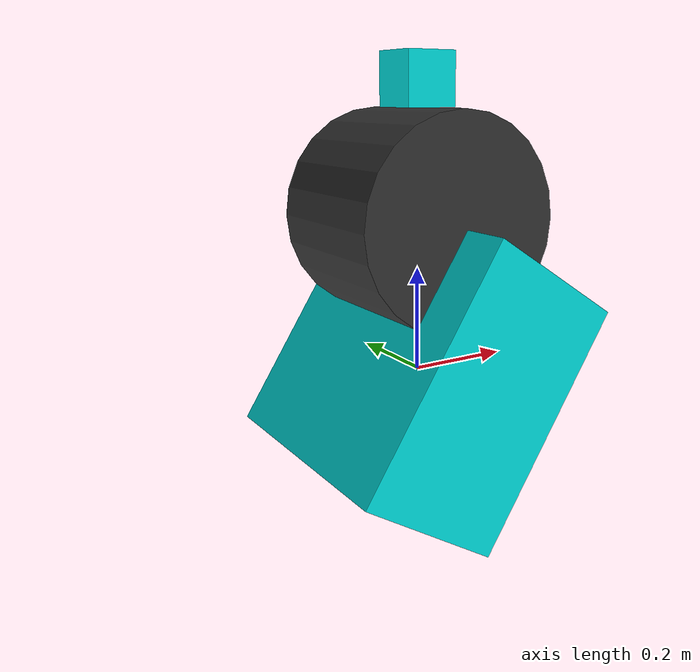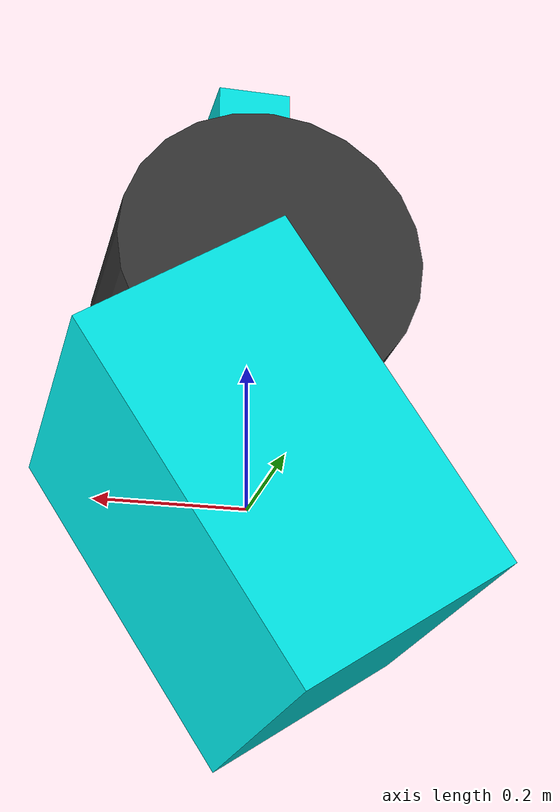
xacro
<?xml version="1.0"?>

<robot name="two_link" xmlns:xacro="http://www.ros.org/wiki/xacro">

    <xacro:include filename="$(find twolink_description)/urdf/twolinks.gazebo"/>

  <link name="link1">
  <visual>
      <origin xyz="0 0 0" rpy="0 0 0"/>
   <geometry>
    <box size="0.5 0.5 0.3"/>
   </geometry>
   <material name="Cyan1">
          <color rgba="0 0.9 0.9 1.0"/>
       </material>
  </visual>
  <collision>
  <origin xyz="0 0 0" rpy="0 0 0"/>
  <geometry>
  <box size="0.5 0.5 0.3"/>
  </geometry>
  </collision>
  <inertial>
  <origin xyz="0 0 0" rpy="0 0 0"/>
  <mass value="0.5"/>
  <inertia
  ixx="0.1" ixy="0.0" ixz="0.0"
  iyy="0.1" iyz="0.0"
  izz="0.1"/>
  </inertial>
</link>

  <link name="link2">
  <visual>
      <origin xyz="0 0 0.3" rpy="1.57079633 0 0"/>
   <geometry>
    <cylinder radius="0.2" length="0.3"/>
   </geometry>
   <material name="Black1">
          <color rgba="0.2 0.2 0.2 1.0"/>
       </material>
  </visual>

<collision>
  <origin xyz="0 0 0.3" rpy="1.57079633 0 0"/>
  <geometry>
  <cylinder radius="0.2" length="0.3"/>
  </geometry>
  </collision>
  <inertial>
  <origin xyz="0 0 0" rpy="0 0 0"/>
  <mass value="0.5"/>
  <inertia
  ixx="0.1" ixy="0.0" ixz="0.0"
  iyy="0.1" iyz="0.0"
  izz="0.1"/>
</inertial>
 </link>

 <link name="camera_link">
  <visual>
      <origin xyz="0 0 0" rpy="0 0 0"/>
   <geometry>
    <box size="0.1 0.1 0.1"/>
   </geometry>
   <material name="Cyan1">
          <color rgba="0 0.9 0.9 1.0"/>
       </material>
  </visual>
  <collision>
  <origin xyz="0 0 0" rpy="0 0 0"/>
  <geometry>
  <box size="0.5 0.5 0.3"/>
  </geometry>
  </collision>
  <inertial>
  <origin xyz="0 0 0" rpy="0 0 0"/>
  <mass value="0.5"/>
  <inertia
  ixx="0.1" ixy="0.0" ixz="0.0"
  iyy="0.1" iyz="0.0"
  izz="0.1"/>
  </inertial>
</link>

<joint name="link_02_camera_link" type="fixed">
    <limit effort="1000.0" lower="-3.14" upper="3.14" velocity="0.5"/>
    <origin rpy="0 0 0" xyz="0 0 0.55"/>
    <parent link="link2"/>
    <child link="camera_link"/>
</joint>

<joint name="base_link__link_01" type="revolute">
    <axis xyz="1 0 0"/>
    <limit effort="1000.0" lower="-3.14" upper="3.14" velocity="0.5"/>
    <origin rpy="0 -1 0" xyz="0 0 0"/>
    <parent link="link2"/>
    <child link="link1"/>
</joint>

<transmission name="tran1">
    <type>transmission_interface/SimpleTransmission</type>
    <joint name="base_link__link_01">
      <hardwareInterface>hardware_interface/EffortJointInterface</hardwareInterface>
    </joint>
    <actuator name="motor1">
      <hardwareInterface>hardware_interface/EffortJointInterface</hardwareInterface>
      <mechanicalReduction>1</mechanicalReduction>
    </actuator>
  </transmission>

</robot>
